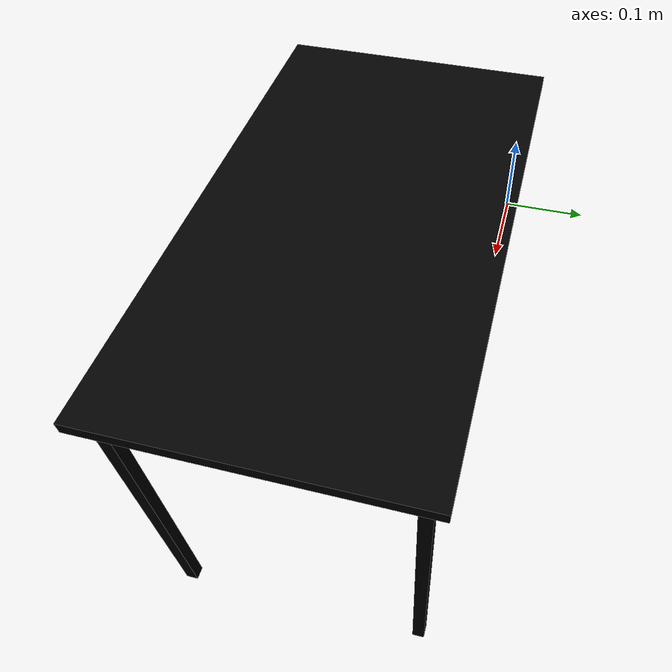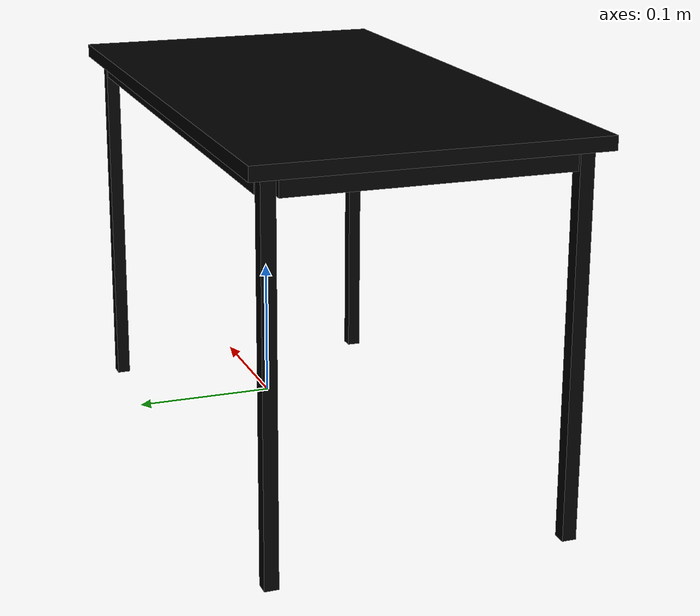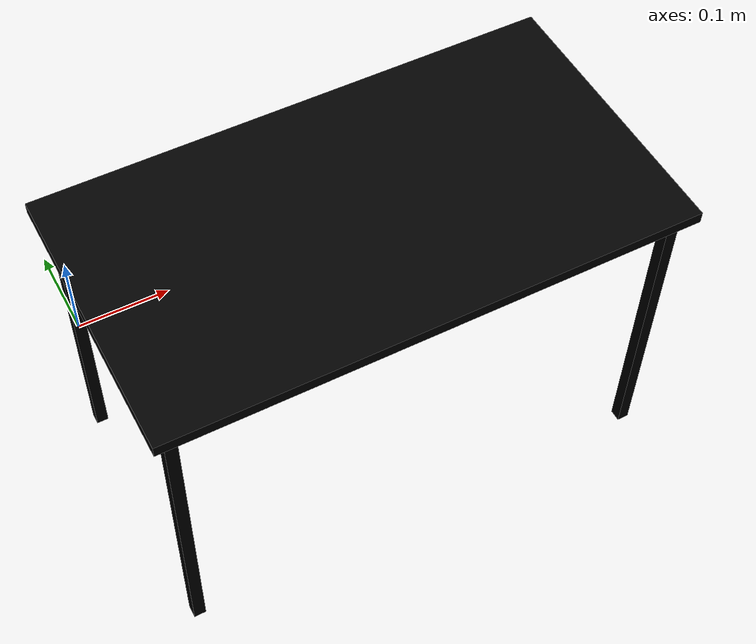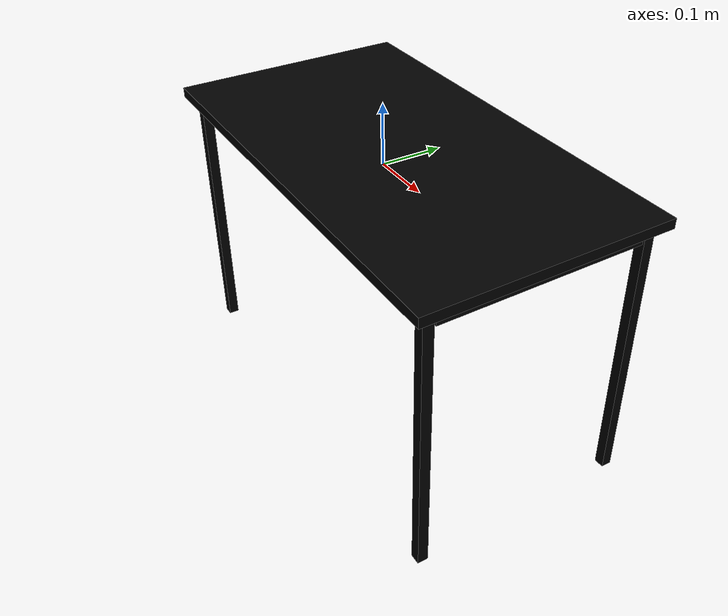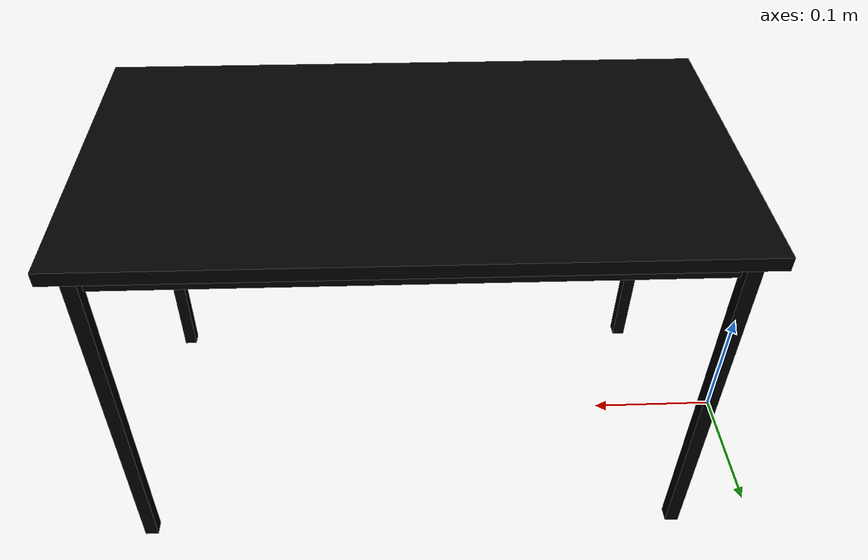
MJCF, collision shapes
<mujoco model="table_jokkmokk_0694">
    <custom>
        <numeric data="-0.183242 0.295976 0.00632 0.497546 0.497546 -0.502442 -0.502442" name="0_part0_initpos"/>
        <numeric data="0.03622 -0.04547 0.014945 -0.0 -0.999937 0.011244 -0.0" name="4_part4_initpos"/>
        <numeric data="-0.194497 0.180137 0.00632 0.707107 -1e-06 -0.707107 -1e-06" name="3_part3_initpos"/>
        <numeric data="0.270455 0.311452 0.006183 0.707022 0.010928 0.707022 -0.010928" name="2_part2_initpos"/>
        <numeric data="0.257998 0.193538 0.00632 0.501724 0.501724 -0.498271 -0.49827" name="1_part1_initpos"/>
    </custom>
    <asset>
        <mesh file="table_jokkmokk_0694/0.stl" name="part0" scale="0.0005 0.0005 0.0005"/>
        <mesh file="table_jokkmokk_0694/4.stl" name="part4" scale="0.0005 0.0005 0.0005"/>
        <mesh file="table_jokkmokk_0694/3.stl" name="part3" scale="0.0005 0.0005 0.0005"/>
        <mesh file="table_jokkmokk_0694/2.stl" name="part2" scale="0.0005 0.0005 0.0005"/>
        <mesh file="table_jokkmokk_0694/1.stl" name="part1" scale="0.0005 0.0005 0.0005"/>
    </asset>
    <equality>
        <weld active="false" body1="0_part0" body2="4_part4" solimp="1 1 0.5" solref="0.01 0.3"/>
        <weld active="false" body1="1_part1" body2="4_part4" solimp="1 1 0.5" solref="0.01 0.3"/>
        <weld active="false" body1="2_part2" body2="4_part4" solimp="1 1 0.5" solref="0.01 0.3"/>
        <weld active="false" body1="3_part3" body2="4_part4" solimp="1 1 0.5" solref="0.01 0.3"/>
        <weld active="false" body1="0_part0" body2="4_part4" solimp="1 1 0.5" solref="0.01 0.3"/>
        <weld active="false" body1="1_part1" body2="4_part4" solimp="1 1 0.5" solref="0.01 0.3"/>
        <weld active="false" body1="3_part3" body2="4_part4" solimp="1 1 0.5" solref="0.01 0.3"/>
        <weld active="false" body1="2_part2" body2="4_part4" solimp="1 1 0.5" solref="0.01 0.3"/>
    </equality>
    <worldbody>
        <body name="0_part0" pos="5e-11 1e-10 0.0" quat="1 0 0 0">
            <geom conaffinity="0" contype="0" density="0" mesh="part0" name="0_part0_mesh" pos="0.0 0.0 0.0"
                  rgba="0.82 0.71 0.55 1" type="mesh"/>
            <site name="0_part0_horizontal_radius_site" pos="5e-11 1e-10 0.0" quat="1 0 0 0" rgba="0 0 0 0"
                  size="0.0005"/>
            <site name="0_part0_top_site" pos="0.0 1e-10 0.17145" quat="1 0 0 0" rgba="0 0 0 0" size="0.0005"/>
            <site name="0_part0_bottom_site" pos="0.0 1e-10 -0.17145" quat="1 0 0 0" rgba="0 0 0 0" size="0.0005"/>
            <site name="0_part0_corner_site8" pos="-0.006350005150000001 0.00635003855 0.17145" quat="1 0 0 0"
                  rgba="0 0 0 0" size="0.01"/>
            <site name="0_part0_corner_site7" pos="0.0063500052 0.00635003855 0.17145" quat="1 0 0 0" rgba="0 0 0 0"
                  size="0.01"/>
            <site name="0_part0_corner_site6" pos="0.0063500052 -0.00635003835 0.17145" quat="1 0 0 0" rgba="0 0 0 0"
                  size="0.01"/>
            <site name="0_part0_corner_site5" pos="-0.006350005150000001 -0.00635003835 0.17145" quat="1 0 0 0"
                  rgba="0 0 0 0" size="0.01"/>
            <site name="0_part0_corner_site4" pos="-0.006350005150000001 0.00635003855 -0.17145" quat="1 0 0 0"
                  rgba="0 0 0 0" size="0.01"/>
            <site name="0_part0_corner_site3" pos="0.0063500052 0.00635003855 -0.17145" quat="1 0 0 0" rgba="0 0 0 0"
                  size="0.01"/>
            <site name="0_part0_corner_site2" pos="0.0063500052 -0.00635003835 -0.17145" quat="1 0 0 0" rgba="0 0 0 0"
                  size="0.01"/>
            <site name="0_part0_corner_site1" pos="-0.006350005150000001 -0.00635003835 -0.17145" quat="1 0 0 0"
                  rgba="0 0 0 0" size="0.01"/>
            <site name="leg-top,0,90,180,270,conn_site4" pos="-0.001 -0.0015 0.1715" quat="1 0 0 0"
                  rgba="0.9019 0.0980 0.2941 0.3" size="0.005"/>
            <geom density="50" name="noviz_collision_0_part0_0" pos="6.816e-05 -6.819500000000001e-05 0.0"
                  quat="1 0 0 0" rgba="0 0 0 0" size="0.006418165 0.0062818449999999994 0.17125" solref="0.001 1"
                  type="box"/>
        </body>
        <body name="4_part4" pos="0.2603499931 -0.1333500349 0.1682750061" quat="1 0 0 0">
            <geom conaffinity="0" contype="0" density="0" mesh="part4" name="4_part4_mesh" pos="0.0 0.0 0.0"
                  rgba="0.82 0.71 0.55 1" type="mesh"/>
            <site name="4_part4_horizontal_radius_site" pos="0.0 0.0 0.0" quat="1 0 0 0" rgba="0 0 0 0" size="0.0005"/>
            <site name="4_part4_top_site" pos="0.0 0.0 0.015875" quat="1 0 0 0" rgba="0 0 0 0" size="0.0005"/>
            <site name="4_part4_bottom_site" pos="0.0 0.0 -0.015875" quat="1 0 0 0" rgba="0 0 0 0" size="0.0005"/>
            <site name="4_part4_corner_site8" pos="-0.2793999877 0.1524000244 0.015875" quat="1 0 0 0" rgba="0 0 0 0"
                  size="0.01"/>
            <site name="4_part4_corner_site7" pos="0.2793999877 0.1524000244 0.015875" quat="1 0 0 0" rgba="0 0 0 0"
                  size="0.01"/>
            <site name="4_part4_corner_site6" pos="0.2793999877 -0.1524000244 0.015875" quat="1 0 0 0" rgba="0 0 0 0"
                  size="0.01"/>
            <site name="4_part4_corner_site5" pos="-0.2793999877 -0.1524000244 0.015875" quat="1 0 0 0" rgba="0 0 0 0"
                  size="0.01"/>
            <site name="4_part4_corner_site4" pos="-0.2793999877 0.1524000244 -0.015875" quat="1 0 0 0" rgba="0 0 0 0"
                  size="0.01"/>
            <site name="4_part4_corner_site3" pos="0.2793999877 0.1524000244 -0.015875" quat="1 0 0 0" rgba="0 0 0 0"
                  size="0.01"/>
            <site name="4_part4_corner_site2" pos="0.2793999877 -0.1524000244 -0.015875" quat="1 0 0 0" rgba="0 0 0 0"
                  size="0.01"/>
            <site name="4_part4_corner_site1" pos="-0.2793999877 -0.1524000244 -0.015875" quat="1 0 0 0" rgba="0 0 0 0"
                  size="0.01"/>
            <site name="top-leg,0,90,180,270,conn_site4" pos="-0.26135 0.13185005000000002 0.00322499" quat="1 0 0 0"
                  rgba="0.9019 0.0980 0.2941 0.3" size="0.005"/>
            <site name="top-leg,0,90,180,270,conn_site3" pos="0.25965 0.13185005000000002 0.00322499" quat="1 0 0 0"
                  rgba="0.9019 0.0980 0.2941 0.3" size="0.005"/>
            <site name="top-leg,0,90,180,270,conn_site2" pos="0.25965 -0.13264995 0.00322499" quat="1 0 0 0"
                  rgba="0.9019 0.0980 0.2941 0.3" size="0.005"/>
            <site name="top-leg,0,90,180,270,conn_site1" pos="-0.26135 -0.13264995 0.00322499" quat="1 0 0 0"
                  rgba="0.9019 0.0980 0.2941 0.3" size="0.005"/>
            <geom density="50" name="noviz_collision_4_part4_0" pos="0.0 -3.0000000000000004e-08 0.00872499"
                  quat="1 0 0 0" rgba="0 0 0 0" size="0.2794 0.1524 0.00625" solref="0.001 1" type="box"/>
            <geom density="50" name="noviz_collision_4_part4_1" pos="0.0 0.13435005000000003 -0.00727501" quat="1 0 0 0"
                  rgba="0 0 0 0" size="0.25 0.005 0.0075" solref="0.001 1" type="box"/>
            <geom density="50" name="noviz_collision_4_part4_2" pos="0.0 -0.13364995 -0.00727501" quat="1 0 0 0"
                  rgba="0 0 0 0" size="0.25 0.005 0.0075" solref="0.001 1" type="box"/>
            <geom density="50" name="noviz_collision_4_part4_3" pos="-0.26235 -3.0000000000000004e-08 -0.00727501"
                  quat="1 0 0 0" rgba="0 0 0 0" size="0.005 0.125 0.0075" solref="0.001 1" type="box"/>
            <geom density="50" name="noviz_collision_4_part4_4" pos="0.26115 -3.0000000000000004e-08 -0.00727501"
                  quat="1 0 0 0" rgba="0 0 0 0" size="0.005 0.125 0.0075" solref="0.001 1" type="box"/>
        </body>
        <body name="3_part3" pos="5e-11 -0.26670003659999997 0.0" quat="1 0 0 0">
            <geom conaffinity="0" contype="0" density="0" mesh="part3" name="3_part3_mesh" pos="0.0 0.0 0.0"
                  rgba="0.82 0.71 0.55 1" type="mesh"/>
            <site name="3_part3_horizontal_radius_site" pos="5e-11 5e-11 0.0" quat="1 0 0 0" rgba="0 0 0 0"
                  size="0.0005"/>
            <site name="3_part3_top_site" pos="0.0 5e-11 0.17145" quat="1 0 0 0" rgba="0 0 0 0" size="0.0005"/>
            <site name="3_part3_bottom_site" pos="0.0 5e-11 -0.17145" quat="1 0 0 0" rgba="0 0 0 0" size="0.0005"/>
            <site name="3_part3_corner_site8" pos="-0.006350005150000001 0.0063500018 0.17145" quat="1 0 0 0"
                  rgba="0 0 0 0" size="0.01"/>
            <site name="3_part3_corner_site7" pos="0.0063500052 0.0063500018 0.17145" quat="1 0 0 0" rgba="0 0 0 0"
                  size="0.01"/>
            <site name="3_part3_corner_site6" pos="0.0063500052 -0.00635000175 0.17145" quat="1 0 0 0" rgba="0 0 0 0"
                  size="0.01"/>
            <site name="3_part3_corner_site5" pos="-0.006350005150000001 -0.00635000175 0.17145" quat="1 0 0 0"
                  rgba="0 0 0 0" size="0.01"/>
            <site name="3_part3_corner_site4" pos="-0.006350005150000001 0.0063500018 -0.17145" quat="1 0 0 0"
                  rgba="0 0 0 0" size="0.01"/>
            <site name="3_part3_corner_site3" pos="0.0063500052 0.0063500018 -0.17145" quat="1 0 0 0" rgba="0 0 0 0"
                  size="0.01"/>
            <site name="3_part3_corner_site2" pos="0.0063500052 -0.00635000175 -0.17145" quat="1 0 0 0" rgba="0 0 0 0"
                  size="0.01"/>
            <site name="3_part3_corner_site1" pos="-0.006350005150000001 -0.00635000175 -0.17145" quat="1 0 0 0"
                  rgba="0 0 0 0" size="0.01"/>
            <site name="leg-top,0,90,180,270,conn_site1" pos="-0.001 0.000700045 0.1715" quat="1 0 0 0"
                  rgba="0.9019 0.0980 0.2941 0.3" size="0.005"/>
            <geom density="50" name="noviz_collision_3_part3_0" pos="6.8295e-05 6.83e-05 0.0" quat="1 0 0 0"
                  rgba="0 0 0 0" size="0.0064183 0.006418305 0.17125" solref="0.001 1" type="box"/>
        </body>
        <body name="2_part2" pos="0.52070001745 -0.26670003659999997 0.0" quat="1 0 0 0">
            <geom conaffinity="0" contype="0" density="0" mesh="part2" name="2_part2_mesh" pos="0.0 0.0 0.0"
                  rgba="0.82 0.71 0.55 1" type="mesh"/>
            <site name="2_part2_horizontal_radius_site" pos="5e-11 5e-11 0.0" quat="1 0 0 0" rgba="0 0 0 0"
                  size="0.0005"/>
            <site name="2_part2_top_site" pos="5e-11 5e-11 0.17145" quat="1 0 0 0" rgba="0 0 0 0" size="0.0005"/>
            <site name="2_part2_bottom_site" pos="5e-11 5e-11 -0.17145" quat="1 0 0 0" rgba="0 0 0 0" size="0.0005"/>
            <site name="2_part2_corner_site8" pos="-0.0063500122 0.0063500018 0.17145" quat="1 0 0 0" rgba="0 0 0 0"
                  size="0.01"/>
            <site name="2_part2_corner_site7" pos="0.006350012300000001 0.0063500018 0.17145" quat="1 0 0 0"
                  rgba="0 0 0 0" size="0.01"/>
            <site name="2_part2_corner_site6" pos="0.006350012300000001 -0.00635000175 0.17145" quat="1 0 0 0"
                  rgba="0 0 0 0" size="0.01"/>
            <site name="2_part2_corner_site5" pos="-0.0063500122 -0.00635000175 0.17145" quat="1 0 0 0" rgba="0 0 0 0"
                  size="0.01"/>
            <site name="2_part2_corner_site4" pos="-0.0063500122 0.0063500018 -0.17145" quat="1 0 0 0" rgba="0 0 0 0"
                  size="0.01"/>
            <site name="2_part2_corner_site3" pos="0.006350012300000001 0.0063500018 -0.17145" quat="1 0 0 0"
                  rgba="0 0 0 0" size="0.01"/>
            <site name="2_part2_corner_site2" pos="0.006350012300000001 -0.00635000175 -0.17145" quat="1 0 0 0"
                  rgba="0 0 0 0" size="0.01"/>
            <site name="2_part2_corner_site1" pos="-0.0063500122 -0.00635000175 -0.17145" quat="1 0 0 0" rgba="0 0 0 0"
                  size="0.01"/>
            <site name="leg-top,0,90,180,270,conn_site2" pos="-0.00070001 0.000700045 0.1715" quat="1 0 0 0"
                  rgba="0.9019 0.0980 0.2941 0.3" size="0.005"/>
            <geom density="50" name="noviz_collision_2_part2_0" pos="-6.83e-05 6.83e-05 0.0" quat="1 0 0 0"
                  rgba="0 0 0 0" size="0.00628174 0.006418305 0.17125" solref="0.001 1" type="box"/>
        </body>
        <body name="1_part1" pos="0.52070001745 1e-10 0.0" quat="1 0 0 0">
            <geom conaffinity="0" contype="0" density="0" mesh="part1" name="1_part1_mesh" pos="0.0 0.0 0.0"
                  rgba="0.82 0.71 0.55 1" type="mesh"/>
            <site name="1_part1_horizontal_radius_site" pos="5e-11 1e-10 0.0" quat="1 0 0 0" rgba="0 0 0 0"
                  size="0.0005"/>
            <site name="1_part1_top_site" pos="5e-11 1e-10 0.17145" quat="1 0 0 0" rgba="0 0 0 0" size="0.0005"/>
            <site name="1_part1_bottom_site" pos="5e-11 1e-10 -0.17145" quat="1 0 0 0" rgba="0 0 0 0" size="0.0005"/>
            <site name="1_part1_corner_site8" pos="-0.0063500122 0.00635003855 0.17145" quat="1 0 0 0" rgba="0 0 0 0"
                  size="0.01"/>
            <site name="1_part1_corner_site7" pos="0.006350012300000001 0.00635003855 0.17145" quat="1 0 0 0"
                  rgba="0 0 0 0" size="0.01"/>
            <site name="1_part1_corner_site6" pos="0.006350012300000001 -0.00635003835 0.17145" quat="1 0 0 0"
                  rgba="0 0 0 0" size="0.01"/>
            <site name="1_part1_corner_site5" pos="-0.0063500122 -0.00635003835 0.17145" quat="1 0 0 0" rgba="0 0 0 0"
                  size="0.01"/>
            <site name="1_part1_corner_site4" pos="-0.0063500122 0.00635003855 -0.17145" quat="1 0 0 0" rgba="0 0 0 0"
                  size="0.01"/>
            <site name="1_part1_corner_site3" pos="0.006350012300000001 0.00635003855 -0.17145" quat="1 0 0 0"
                  rgba="0 0 0 0" size="0.01"/>
            <site name="1_part1_corner_site2" pos="0.006350012300000001 -0.00635003835 -0.17145" quat="1 0 0 0"
                  rgba="0 0 0 0" size="0.01"/>
            <site name="1_part1_corner_site1" pos="-0.0063500122 -0.00635003835 -0.17145" quat="1 0 0 0" rgba="0 0 0 0"
                  size="0.01"/>
            <site name="leg-top,0,90,180,270,conn_site3" pos="-0.00070001 -0.0015 0.1715" quat="1 0 0 0"
                  rgba="0.9019 0.0980 0.2941 0.3" size="0.005"/>
            <geom density="50" name="noviz_collision_1_part1_0" pos="-6.8175e-05 -6.819500000000001e-05 0.0"
                  quat="1 0 0 0" rgba="0 0 0 0" size="0.00628186 0.00628184 0.17125" solref="0.001 1" type="box"/>
        </body>
    </worldbody>
    <actuator/>
    <sensor/>
    <contact/>
    <default/>
</mujoco>
